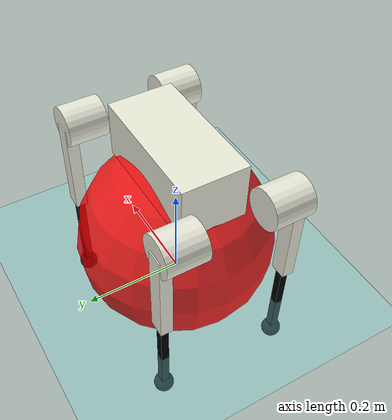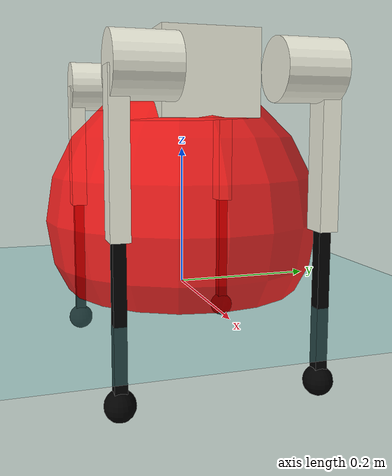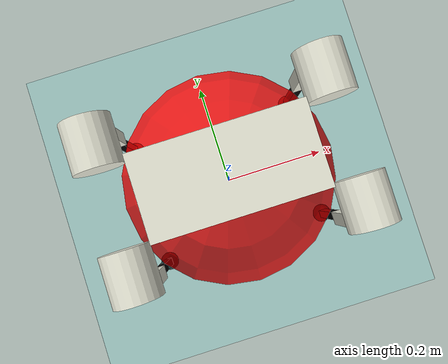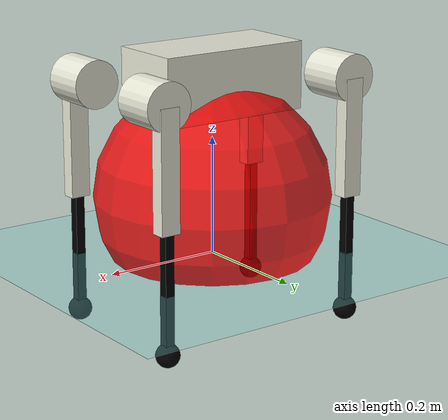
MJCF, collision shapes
<mujoco model="a1_description">
    <compiler angle="radian" meshdir="a1_meshes/" />
    <size njmax="500" nconmax="100" />
    <option gravity='0 0 -9.806' iterations='50' solver='Newton' timestep='0.002'/>

    <default>
        <geom contype="1" conaffinity="1" friction="0.6 0.3 0.3" rgba="0.5 0.6 0.7 1" margin="0.001" group="0"/>

        <light castshadow="false" diffuse="1 1 1"/>
        <motor ctrlrange="-33.5 33.5" ctrllimited="true"/>
        <camera fovy="60"/>
        <joint damping="0.01" armature="0.01" frictionloss="0.2" />

    </default>

    <asset>
        <mesh name="trunk" file="trunk.stl" />
        <mesh name="hip" file="hip.stl" />
        <mesh name="thigh_mirror" file="thigh_mirror.stl" />
        <mesh name="calf" file="calf.stl" />
        <mesh name="thigh" file="thigh.stl" />
    </asset>

    <asset>
        <texture type="skybox" builtin="gradient" rgb1="1.0 1.0 1.0" rgb2="1.0 1.0 1.0" width="512" height="512"/>
        <texture name="plane" type="2d" builtin="flat" rgb1="1 1 1" rgb2="1 1 1" width="512" height="512" mark="cross" markrgb="0 0 0"/>
        <material name="plane" reflectance="0.0" texture="plane" texrepeat="3 3" texuniform="true"/>
    </asset>

    <visual>
        <rgba com="0.502 1.0 0 0.5" contactforce="0.98 0.4 0.4 0.7" contactpoint="1.0 1.0 0.6 0.4"/>
        <scale com="0.2" forcewidth="0.035" contactwidth="0.10" contactheight="0.04"/>
    </visual>

    <worldbody>
        <light directional="true" diffuse=".8 .8 .8" pos="0 0 10" dir="0 0 -10"/>
        <camera name="track" mode="trackcom" pos="0 -1.3 1.6" xyaxes="1 0 0 0 0.707 0.707"/>
        <geom name='floor' type='plane' conaffinity='1' condim='3' contype='1' rgba="0.5 0.9 0.9 0.1" material='plane' pos='0 0 0' size='0 0 1'/>
        <site name="goal_site" pos="0 0 0.1" size="0.2" rgba="1 0 0 0.8"/>

        <body name="torso" pos="0 0 0.3">
            <inertial pos="0.0127283 0.00218554 0.000514891" quat="0.00186575 0.711506 0.000389649 0.702677" mass="4.714" diaginertia="0.0648213 0.0565803 0.0169323" />
            <joint name="trunk_joint" type="free" />
            <geom name="torso_geom1" type="mesh" contype="0" conaffinity="0" group="1" rgba="0.913725 0.913725 0.847059 1" mesh="trunk" />
            <geom name="torso_geom2" size="0.1335 0.066 0.057" type="box" rgba="0.913725 0.913725 0.847059 0" />
            <geom name="torso_geom3" size="0.0005 0.0005 0.0005" type="box" contype="0" conaffinity="0" group="1" rgba="0.8 0 0 0" />
            <geom name="torso_geom4" size="0.0005 0.0005 0.0005" type="box" rgba="0.8 0 0 0" />
            <site name="imu" pos="0 0 0"/>

            <body name="FR_hip" pos="0.183 -0.047 0">
                <inertial pos="-0.003311 -0.000635 3.1e-05" quat="0.507528 0.506268 0.491507 0.494499" mass="0.696" diaginertia="0.000807752 0.00055293 0.000468983" />
                <joint name="FR_hip_joint" pos="0 0 0" axis="1 0 0" limited="true" range="-0.802851 0.802851" />
                <geom name="FR_hip_geom1" quat="0 1 0 0" type="mesh" contype="0" conaffinity="0" group="1" rgba="0.913725 0.913725 0.847059 1" mesh="hip" />
                <geom name="FR_hip_geom2" size="0.04 0.04" pos="0 -0.055 0" quat="0.707107 0.707107 0 0" type="cylinder" rgba="0.913725 0.913725 0.847059 0" />
                <body name="FR_thigh" pos="0 -0.08505 0">
                    <inertial pos="-0.003237 0.022327 -0.027326" quat="0.999125 -0.00256393 -0.0409531 -0.00806091" mass="1.013" diaginertia="0.00555739 0.00513936 0.00133944" />
                    <joint name="FR_thigh_joint" pos="0 0 0" axis="0 1 0" limited="true" range="-1.0472 4.18879" />
                    <geom name="FR_thigh_geom1" type="mesh" contype="0" conaffinity="0" group="1" rgba="0.913725 0.913725 0.847059 1" mesh="thigh_mirror" />
                    <geom name="FR_thigh_geom2" size="0.1 0.01225 0.017" pos="0 0 -0.1" quat="0.707107 0 0.707107 0" type="box" rgba="0.913725 0.913725 0.847059 0" />
                    <body name="FR_calf" pos="0 0 -0.2">
                        <inertial pos="0.00472659 0 -0.131975" quat="0.706886 0.017653 0.017653 0.706886" mass="0.226" diaginertia="0.00340344 0.00339393 3.54834e-05" />
                        <joint name="FR_calf_joint" pos="0 0 0" axis="0 1 0" limited="true" range="-2.69653 -0.916298" />
                        <geom name="FR_calf_geom1" type="mesh" contype="0" conaffinity="0" group="1" rgba="0 0 0 1" mesh="calf" />
                        <geom name="FR_calf_geom2" size="0.1 0.008 0.008" pos="0 0 -0.1" quat="0.707107 0 0.707107 0" type="box" rgba="0 0 0 0" />
                        <geom name="FR_calf_geom3" size="0.01" pos="0 0 -0.2" contype="0" conaffinity="0" group="1" rgba="0 0 0 1" />
                        <geom name="FR_calf_geom4" size="0.02" pos="0 0 -0.2" rgba="0 0 0 1" />
                    </body>
                </body>
            </body>
            <body name="FL_hip" pos="0.183 0.047 0">
                <inertial pos="-0.003311 0.000635 3.1e-05" quat="0.494499 0.491507 0.506268 0.507528" mass="0.696" diaginertia="0.000807752 0.00055293 0.000468983" />
                <joint name="FL_hip_joint" pos="0 0 0" axis="1 0 0" limited="true" range="-0.802851 0.802851" />
                <geom name="FL_hip_geom1" type="mesh" contype="0" conaffinity="0" group="1" rgba="0.913725 0.913725 0.847059 1" mesh="hip" />
                <geom name="FL_hip_geom2" size="0.04 0.04" pos="0 0.055 0" quat="0.707107 0.707107 0 0" type="cylinder" rgba="0.913725 0.913725 0.847059 0" />
                <body name="FL_thigh" pos="0 0.08505 0">
                    <inertial pos="-0.003237 -0.022327 -0.027326" quat="0.999125 0.00256393 -0.0409531 0.00806091" mass="1.013" diaginertia="0.00555739 0.00513936 0.00133944" />
                    <joint name="FL_thigh_joint" pos="0 0 0" axis="0 1 0" limited="true" range="-1.0472 4.18879" />
                    <geom name="FL_thigh_geom1" type="mesh" contype="0" conaffinity="0" group="1" rgba="0.913725 0.913725 0.847059 1" mesh="thigh" />
                    <geom name="FL_thigh_geom2" size="0.1 0.01225 0.017" pos="0 0 -0.1" quat="0.707107 0 0.707107 0" type="box" rgba="0.913725 0.913725 0.847059 0" />
                    <body name="FL_calf" pos="0 0 -0.2">
                        <inertial pos="0.00472659 0 -0.131975" quat="0.706886 0.017653 0.017653 0.706886" mass="0.226" diaginertia="0.00340344 0.00339393 3.54834e-05" />
                        <joint name="FL_calf_joint" pos="0 0 0" axis="0 1 0" limited="true" range="-2.69653 -0.916298" />
                        <geom name="FL_calf_geom1" type="mesh" contype="0" conaffinity="0" group="1" rgba="0 0 0 1" mesh="calf" />
                        <geom name="FL_calf_geom2" size="0.1 0.008 0.008" pos="0 0 -0.1" quat="0.707107 0 0.707107 0" type="box" rgba="0 0 0 0" />
                        <geom name="FL_calf_geom3" size="0.01" pos="0 0 -0.2" contype="0" conaffinity="0" group="1" rgba="0 0 0 1" />
                        <geom name="FL_calf_geom4" size="0.02" pos="0 0 -0.2" rgba="0 0 0 1" />
                    </body>
                </body>
            </body>
            <body name="RR_hip" pos="-0.183 -0.047 0">
                <inertial pos="0.003311 -0.000635 3.1e-05" quat="0.491507 0.494499 0.507528 0.506268" mass="0.696" diaginertia="0.000807752 0.00055293 0.000468983" />
                <joint name="RR_hip_joint" pos="0 0 0" axis="1 0 0" limited="true" range="-0.802851 0.802851" />
                <geom name="RR_hip_geom1" quat="0 0 0 -1" type="mesh" contype="0" conaffinity="0" group="1" rgba="0.913725 0.913725 0.847059 1" mesh="hip" />
                <geom name="RR_hip_geom2" size="0.04 0.04" pos="0 -0.055 0" quat="0.707107 0.707107 0 0" type="cylinder" rgba="0.913725 0.913725 0.847059 0" />
                <body name="RR_thigh" pos="0 -0.08505 0">
                    <inertial pos="-0.003237 0.022327 -0.027326" quat="0.999125 -0.00256393 -0.0409531 -0.00806091" mass="1.013" diaginertia="0.00555739 0.00513936 0.00133944" />
                    <joint name="RR_thigh_joint" pos="0 0 0" axis="0 1 0" limited="true" range="-1.0472 4.18879" />
                    <geom name="RR_thigh_geom1" type="mesh" contype="0" conaffinity="0" group="1" rgba="0.913725 0.913725 0.847059 1" mesh="thigh_mirror" />
                    <geom name="RR_thigh_geom2" size="0.1 0.01225 0.017" pos="0 0 -0.1" quat="0.707107 0 0.707107 0" type="box" rgba="0.913725 0.913725 0.847059 0" />
                    <body name="RR_calf" pos="0 0 -0.2">
                        <inertial pos="0.00472659 0 -0.131975" quat="0.706886 0.017653 0.017653 0.706886" mass="0.226" diaginertia="0.00340344 0.00339393 3.54834e-05" />
                        <joint name="RR_calf_joint" pos="0 0 0" axis="0 1 0" limited="true" range="-2.69653 -0.916298" />
                        <geom name="RR_calf_geom1" type="mesh" contype="0" conaffinity="0" group="1" rgba="0 0 0 1" mesh="calf" />
                        <geom name="RR_calf_geom2" size="0.1 0.008 0.008" pos="0 0 -0.1" quat="0.707107 0 0.707107 0" type="box" rgba="0 0 0 0" />
                        <geom name="RR_calf_geom3" size="0.01" pos="0 0 -0.2" contype="0" conaffinity="0" group="1" rgba="0 0 0 1" />
                        <geom name="RR_calf_geom4" size="0.02" pos="0 0 -0.2" rgba="0 0 0 1" />
                    </body>
                </body>
            </body>
            <body name="RL_hip" pos="-0.183 0.047 0">
                <inertial pos="0.003311 0.000635 3.1e-05" quat="0.506268 0.507528 0.494499 0.491507" mass="0.696" diaginertia="0.000807752 0.00055293 0.000468983" />
                <joint name="RL_hip_joint" pos="0 0 0" axis="1 0 0" limited="true" range="-0.802851 0.802851" />
                <geom name="RL_hip_geom1" quat="0 0 1 0" type="mesh" contype="0" conaffinity="0" group="1" rgba="0.913725 0.913725 0.847059 1" mesh="hip" />
                <geom name="RL_hip_geom2" size="0.04 0.04" pos="0 0.055 0" quat="0.707107 0.707107 0 0" type="cylinder" rgba="0.913725 0.913725 0.847059 0" />
                <body name="RL_thigh" pos="0 0.08505 0">
                    <inertial pos="-0.003237 -0.022327 -0.027326" quat="0.999125 0.00256393 -0.0409531 0.00806091" mass="1.013" diaginertia="0.00555739 0.00513936 0.00133944" />
                    <joint name="RL_thigh_joint" pos="0 0 0" axis="0 1 0" limited="true" range="-1.0472 4.18879" />
                    <geom name="RL_thigh_geom1" type="mesh" contype="0" conaffinity="0" group="1" rgba="0.913725 0.913725 0.847059 1" mesh="thigh" />
                    <geom name="RL_thigh_geom2" size="0.1 0.01225 0.017" pos="0 0 -0.1" quat="0.707107 0 0.707107 0" type="box" rgba="0.913725 0.913725 0.847059 0" />
                    <body name="RL_calf" pos="0 0 -0.2">
                        <inertial pos="0.00472659 0 -0.131975" quat="0.706886 0.017653 0.017653 0.706886" mass="0.226" diaginertia="0.00340344 0.00339393 3.54834e-05" />
                        <joint name="RL_calf_joint" pos="0 0 0" axis="0 1 0" limited="true" range="-2.69653 -0.916298" />
                        <geom name="RL_calf_geom1" type="mesh" contype="0" conaffinity="0" group="1" rgba="0 0 0 1" mesh="calf" />
                        <geom name="RL_calf_geom2" size="0.1 0.008 0.008" pos="0 0 -0.1" quat="0.707107 0 0.707107 0" type="box" rgba="0 0 0 0" />
                        <geom name="RL_calf_geom3" size="0.01" pos="0 0 -0.2" contype="0" conaffinity="0" group="1" rgba="0 0 0 1" />
                        <geom name="RL_calf_geom4" size="0.02" pos="0 0 -0.2" rgba="0 0 0 1" />
                    </body>
                </body>
            </body>
        </body>
    <body name="robot0:external_camera_body_0" pos="0 0 0">
        <camera euler="0.15 0. 0" fovy="90" name="external_camera_0" pos="1.125 0.5 2.2"></camera>
    </body>
    </worldbody>
    <actuator>

        <motor name="FR_hip"       gear="1" joint="FR_hip_joint"/>
        <motor name="FR_thigh"       gear="1" joint="FR_thigh_joint"/>
        <motor name="FR_calf"       gear="1" joint="FR_calf_joint"/>
        <motor name="FL_hip"     gear="1" joint="FL_hip_joint"/>
        <motor name="FL_thigh"     gear="1" joint="FL_thigh_joint"/>
        <motor name="FL_calf"     gear="1" joint="FL_calf_joint"/>
        <motor name="RR_hip"      gear="1" joint="RR_hip_joint"/>
        <motor name="RR_thigh"   gear="1" joint="RR_thigh_joint"/>
        <motor name="RR_calf"   gear="1" joint="RR_calf_joint" />
        <motor name="RL_hip"      gear="1" joint="RL_hip_joint"/>
        <motor name="RL_thigh"      gear="1" joint="RL_thigh_joint"/>
        <motor name="RL_calf"      gear="1" joint="RL_calf_joint"/>
    </actuator>

</mujoco>
